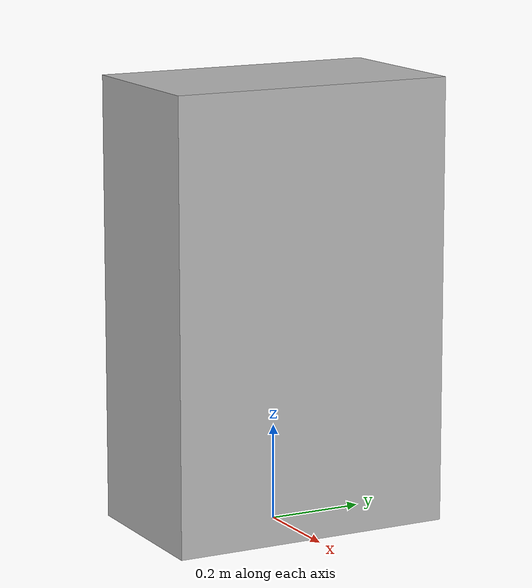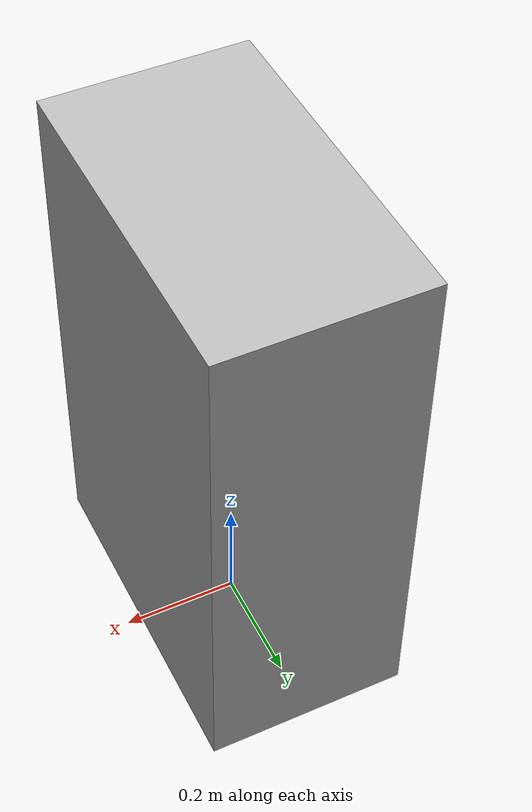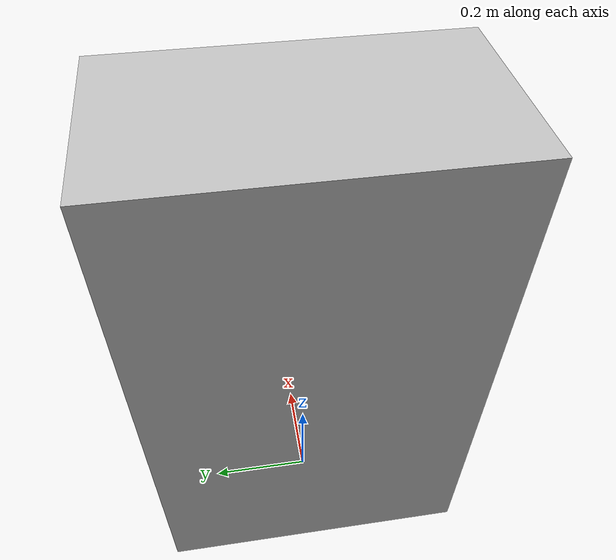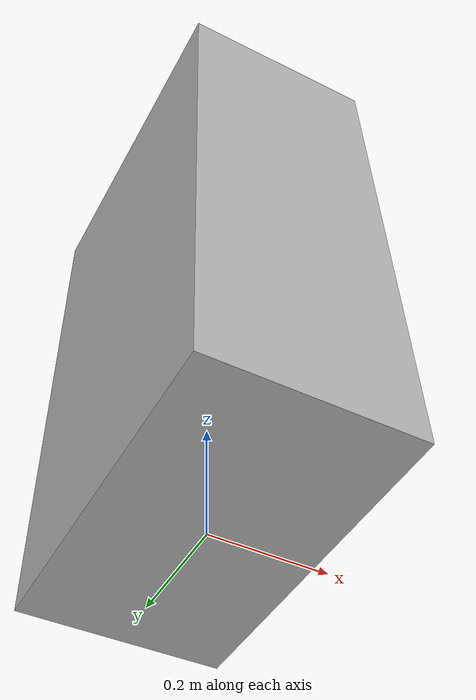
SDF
<?xml version="1.0"?>
<sdf version="1.6">
  <model name="rwc2017/cabinet_black">
    <link name="1_link">
      <collision name="1_col">
        <geometry>
          <box>
            <size>0.35 0.6 0.93</size>
          </box>
        </geometry>
      </collision>
      <visual name="1_vis">
        <geometry>
          <box>
            <size>0.35 0.6 0.93</size>
          </box>
        </geometry>
      </visual>
      <pose>0 0 0.465 0 0 0</pose>
    </link>
    <link name="on_top_of">
      <virtual_volume name="on_top_of_vv">
        <geometry>
          <box>
            <size>0.29 0.54 0.25</size>
          </box>
        </geometry>
        <pose>0.0 0.0 1.075 0 0 0</pose>
      </virtual_volume>
    </link>
    <link name="in_front_of">
      <virtual_volume name="in_front_of_vv">
        <geometry>
          <box>
            <size>0.2 0.4 0.01</size>
          </box>
        </geometry>
        <pose>0.6 0.0 0.005 0 0 0</pose>
      </virtual_volume>
    </link>
    <static>true</static>
  </model>
</sdf>
